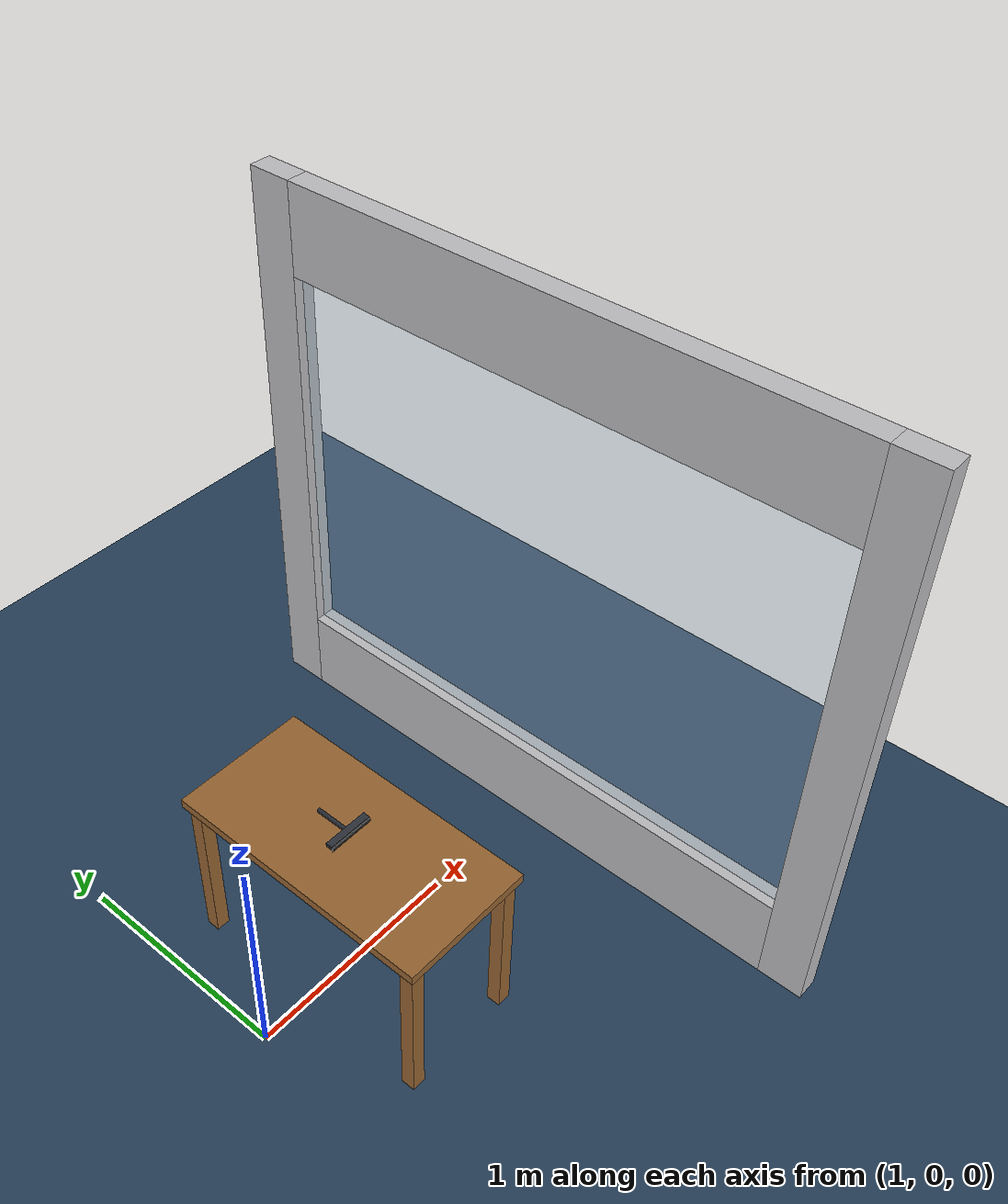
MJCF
<?xml version='1.0' encoding='utf-8'?>
<mujoco model="window_cleaning">
  <asset>
    <texture name="grid" type="2d" builtin="checker" width="512" height="512" rgb1=".1 .2 .3" rgb2=".2 .3 .4" />
    <material name="grid" texture="grid" texrepeat="1 1" texuniform="true" reflectance="0.2" specular="1.0" shininess="0.5" />
    <material name="table_wood" rgba="0.6 0.4 0.2 1" specular="0.3" shininess="0.2" />
    <material name="squeegee_rubber" rgba="0.08 0.08 0.08 1" specular="0.2" shininess="0.05" />
    <material name="squeegee_handle" rgba="0.18 0.2 0.23 1" specular="0.35" shininess="0.25" />
    <material name="wall_concrete" rgba="0.75 0.75 0.76 1" specular="0.05" shininess="0.1" />
    <material name="glass_window" rgba="0.7 0.85 0.95 0.3" specular="0.9" shininess="0.8" />
  </asset>
  <worldbody>
    <light pos="0 0 5" directional="true" diffuse=".8 .8 .8" specular=".5 .5 .5" dir="0 0 -1" castshadow="true" />
    <geom name="floor" type="plane" material="grid" size="0 0 0.1" pos="0 0 0" group="2" contype="1" conaffinity="1" friction="0.6 0.005 0.0001" />
    <body name="table" pos="1.5 0 0" quat="0.70710678 0 0 0.70710678">
      <joint name="table_joint" type="free" />
      <geom name="tabletop" type="box" size="0.6 0.3 0.02" pos="0 0 0.75" group="2" material="table_wood" mass="15" contype="1" conaffinity="1" friction="0.5 0.005 0.0001" />
      <geom name="table_leg_fl" type="box" size="0.03 0.03 0.365" pos="0.55 0.25 0.365" material="table_wood" mass="1" contype="1" conaffinity="1" friction="0.5 0.005 0.0001" />
      <geom name="table_leg_fr" type="box" size="0.03 0.03 0.365" pos="0.55 -0.25 0.365" material="table_wood" mass="1" contype="1" conaffinity="1" friction="0.5 0.005 0.0001" />
      <geom name="table_leg_rl" type="box" size="0.03 0.03 0.365" pos="-0.55 0.25 0.365" material="table_wood" mass="1" contype="1" conaffinity="1" friction="0.5 0.005 0.0001" />
      <geom name="table_leg_rr" type="box" size="0.03 0.03 0.365" pos="-0.55 -0.25 0.365" material="table_wood" mass="1" contype="1" conaffinity="1" friction="0.5 0.005 0.0001" />
    </body>
    <body name="window_squeegee" pos="1.5 0 0.8">
      <joint name="squeegee_joint" type="free" damping="0.1" />
      <geom name="squeegee_head" type="box" size="0.1 0.015 0.008" pos="0 0 0" material="squeegee_handle" mass="0.05" contype="1" conaffinity="1" friction="0.4 0.005 0.0001" />
      <geom name="squeegee_blade" type="box" size="0.1 0.002 0.008" pos="0 -0.017 -0.008" material="squeegee_rubber" mass="0.03" contype="1" conaffinity="1" friction="1.5 0.02 0.001" solimp="0.9 0.95 0.001 0.5 2" solref="0.02 1" />
      <geom name="squeegee_handle" type="cylinder" size="0.009" fromto="0 0.015 0  0 0.155 0" material="squeegee_handle" mass="0.07" contype="1" conaffinity="1" friction="0.4 0.005 0.0001" />
    </body>
    <body name="office_wall" pos="2.6 0 0">
      <geom name="wall_left" type="box" size="0.05 0.1 1.3" pos="0 1.35 1.3" material="wall_concrete" mass="200" contype="1" conaffinity="1" friction="0.8 0.005 0.0001" />
      <geom name="wall_right" type="box" size="0.05 0.1 1.3" pos="0 -1.35 1.3" material="wall_concrete" mass="200" contype="1" conaffinity="1" friction="0.8 0.005 0.0001" />
      <geom name="wall_top" type="box" size="0.05 1.25 0.2" pos="0 0 2.4" material="wall_concrete" mass="200" contype="1" conaffinity="1" friction="0.8 0.005 0.0001" />
      <geom name="wall_bottom" type="box" size="0.05 1.25 0.2" pos="0 0 0.2" material="wall_concrete" mass="200" contype="1" conaffinity="1" friction="0.8 0.005 0.0001" />
      <geom name="window_glass" type="box" size="0.005 1.25 0.9" pos="0 0 1.3" material="glass_window" mass="20" contype="1" conaffinity="1" friction="0.2 0.001 0.0001" />
    </body>
  </worldbody>
</mujoco>
